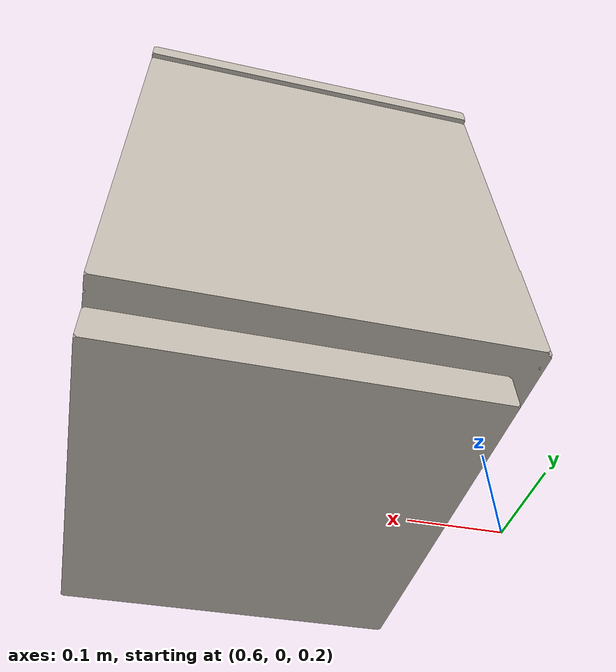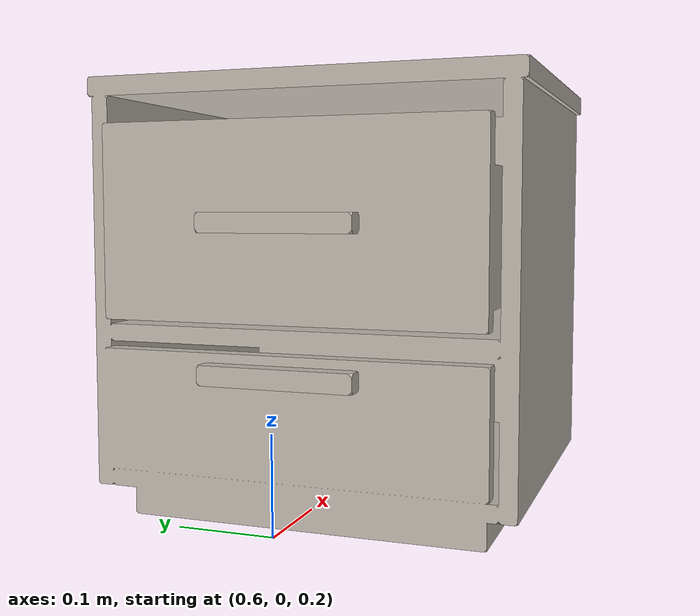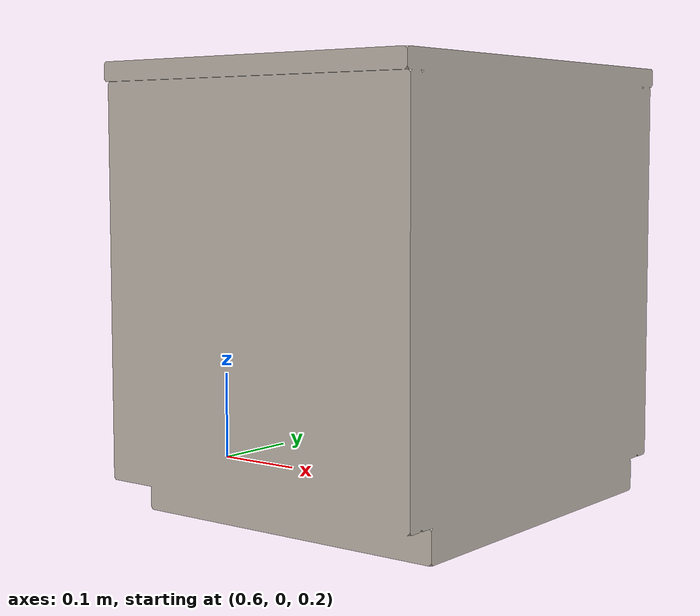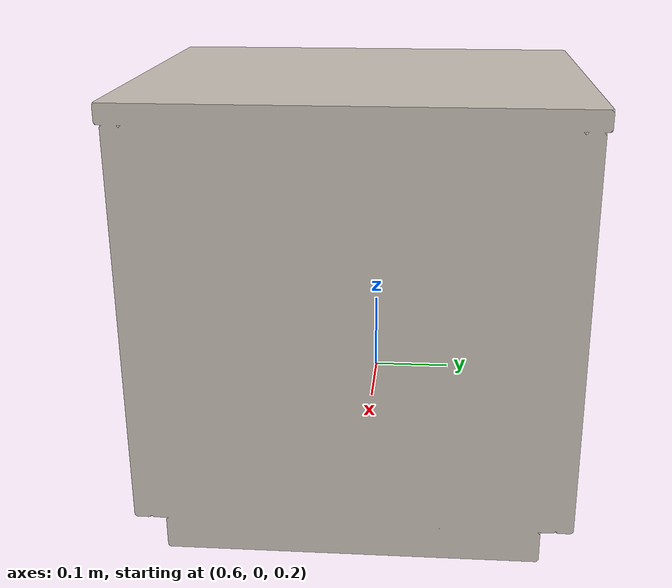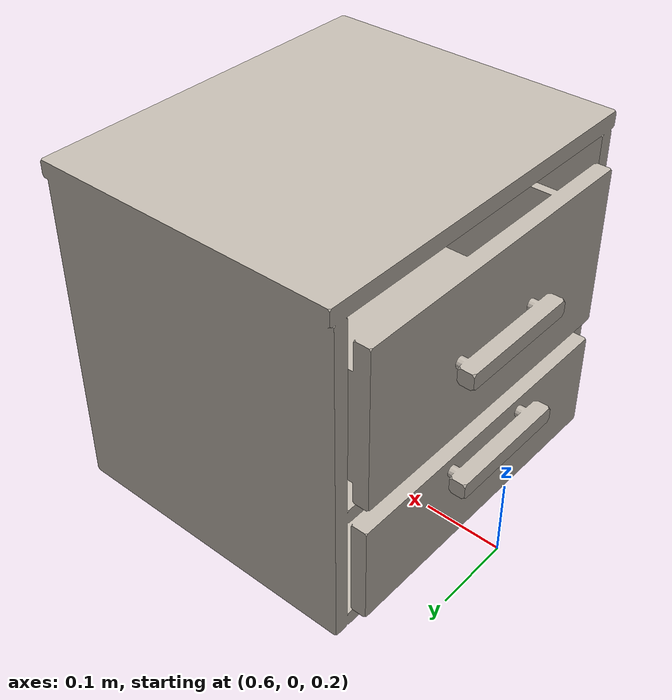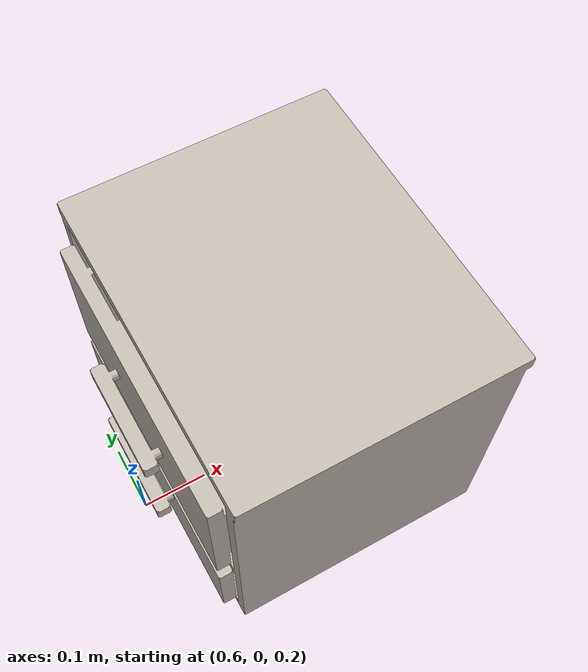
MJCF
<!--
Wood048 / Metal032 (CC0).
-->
<?xml version="1.0"?>
<mujoco model="drawer">
  <compiler angle="radian" meshdir="assets" texturedir="assets"/>

  <asset>
    <texture name="oak_tex" type="2d" file="oak.png"/>
    <material name="oak" texture="oak_tex" specular="0.12" shininess="0.25" reflectance="0.0"/>
    <texture name="steel_tex" type="2d" file="steel.png"/>
    <material name="steel" texture="steel_tex" specular="0.7" shininess="0.6" reflectance="0.15"/>
    <mesh name="drawer_carcass" file="drawer_carcass.obj"/>
    <mesh name="drawer_case_pull" file="drawer_case_pull.obj"/>
    <mesh name="drawer_front" file="drawer_front.obj"/>
    <mesh name="drawer_pull" file="drawer_pull.obj"/>
  </asset>

  <worldbody>
    <body name="drawer_base" pos="0.65 0 0.5" mocap="true">
      <geom name="drawer_carcass_visual" type="mesh" mesh="drawer_carcass" material="oak" contype="0" conaffinity="0" group="2" mass="0"/>
      <geom name="drawer_case_pull_visual" type="mesh" mesh="drawer_case_pull" material="steel" contype="0" conaffinity="0" group="2" mass="0"/>
      <geom name="drawer_body" type="box" pos="0.1900 0.0000 0.1400" size="0.1900 0.2300 0.0100" group="3" rgba="0.5 0.5 0.5 0.25" condim="3" friction="1 0.03 0.003" contype="2" conaffinity="1" solref="0.01 1"/>
      <geom name="drawer_case_left" type="box" pos="0.1900 0.2160 -0.0750" size="0.1900 0.0090 0.2050" group="3" rgba="0.5 0.5 0.5 0.25" condim="3" friction="1 0.03 0.003" contype="2" conaffinity="1" solref="0.01 1"/>
      <geom name="drawer_case_right" type="box" pos="0.1900 -0.2160 -0.0750" size="0.1900 0.0090 0.2050" group="3" rgba="0.5 0.5 0.5 0.25" condim="3" friction="1 0.03 0.003" contype="2" conaffinity="1" solref="0.01 1"/>
      <geom name="drawer_case_rail" type="box" pos="0.1900 0.0000 -0.1160" size="0.1900 0.2070 0.0090" group="3" rgba="0.5 0.5 0.5 0.25" condim="3" friction="1 0.03 0.003" contype="2" conaffinity="1" solref="0.01 1"/>
      <geom name="drawer_case_door" type="box" pos="-0.0100 0.0000 -0.1930" size="0.0100 0.2020 0.0630" group="3" rgba="0.5 0.5 0.5 0.25" condim="3" friction="1 0.03 0.003" contype="2" conaffinity="1" solref="0.01 1"/>
      <!-- Base site at the handle location when the drawer is closed. -->
      <site name="base_site" pos="-0.04 0.0 0.0" size="0.01" rgba="0 0 1 0.3"/>
      <body name="handle">
        <joint name="drawer_slide" type="slide" axis="1 0 0" range="-0.25 0"
               limited="true" damping="0.1"/>
      <geom name="drawer_front_visual" type="mesh" mesh="drawer_front" material="oak" contype="0" conaffinity="0" group="2" mass="0"/>
      <geom name="drawer_pull_visual" type="mesh" mesh="drawer_pull" material="steel" contype="0" conaffinity="0" group="2" mass="0"/>
      <geom name="drawer_panel" type="box" pos="-0.0100 0.0000 0.0000" size="0.0100 0.2000 0.1000" group="3" rgba="0.5 0.5 0.5 0.25" condim="3" friction="1 0.03 0.003" contype="2" conaffinity="1" solref="0.01 1" density="700.0"/>
      <geom name="handle" type="box" pos="-0.0400 0.0000 0.0000" size="0.0100 0.0800 0.0100" group="3" rgba="0.5 0.5 0.5 0.25" condim="3" friction="1 0.03 0.003" contype="2" conaffinity="1" solref="0.01 1" density="2700.0"/>
        <site name="object_site" pos="-0.04 0.0 0" size="0.01 0.01 0.01" rgba="1 0 0 1"/>
      </body>
    </body>
  </worldbody>
</mujoco>
